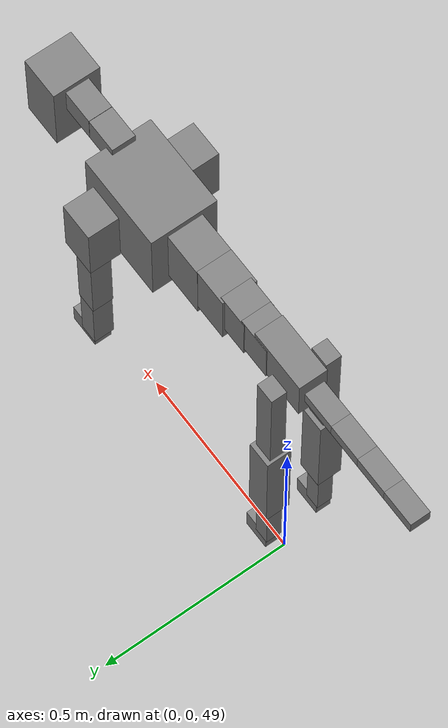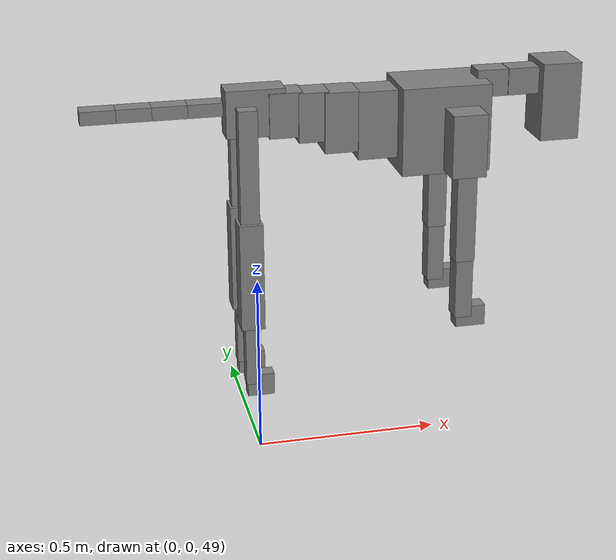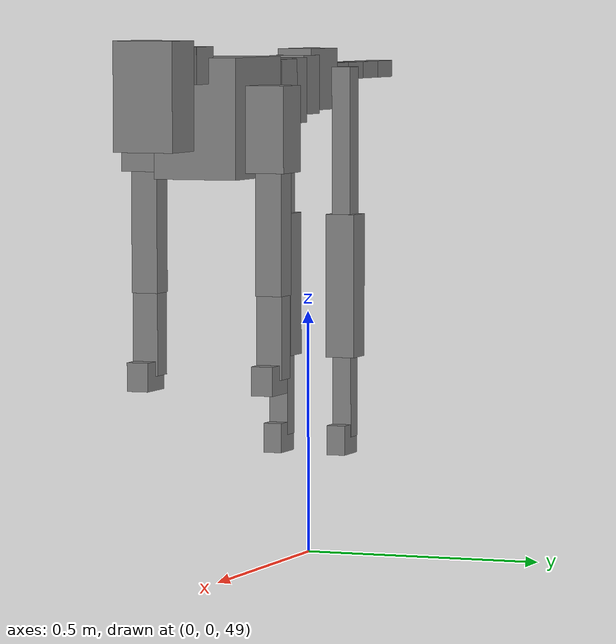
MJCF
<mujoco model="dog">

    <default>
        <joint armature="0.02" stiffness="1" damping="0.2" limited="true"/>
        <geom condim="3" friction="1 0.05 0.05" margin="0.01"/>
        <motor ctrllimited="true" ctrlrange="-1.0 1.0" forcelimited="true" gear="50"/>
    </default>

    <compiler inertiafromgeom="true" angle="radian"/>

    <option timestep="0.016" iterations="50" tolerance="1e-10" solver="Newton" jacobian="dense" cone="pyramidal"/>

    <size nconmax="20000" njmax="60000" nstack="5000000"/>
    <visual>
        <map force="0.1" zfar="30"/>
        <rgba haze="0.15 0.25 0.35 1"/>
        <quality shadowsize="2048"/>
        <global offwidth="800" offheight="800"/>
    </visual>

    <asset>
        <texture type="skybox" builtin="gradient" rgb1="0.3 0.5 0.7" rgb2="0 0 0" width="512" height="512"/>
        <texture name="texplane" type="2d" builtin="checker" rgb1=".2 .3 .4" rgb2=".1 0.15 0.2" width="512" height="512"
                 mark="cross" markrgb=".8 .8 .8"/>
        <texture name="texgeom" type="cube" builtin="flat" mark="cross" width="127" height="1278" rgb1="0.8 0.6 0.4"
                 rgb2="0.8 0.6 0.4" markrgb="1 1 1" random="0.01"/>

        <material name="matplane" reflectance="0.3" texture="texplane" texrepeat="1 1" texuniform="true"/>
        <material name="matgeom" texture="texgeom" texuniform="true" rgba="0.8 0.6 .4 1"/>
    </asset>

    <worldbody>
        <geom name="floor" pos="0 0 0" size="0 0 .25" type="plane" material="matplane" condim="3"/>

        <light directional="false" diffuse=".2 .2 .2" specular="0 0 0" pos="0 0 5" dir="0 0 -1" castshadow="false"/>
        <light mode="targetbodycom" target="torso" directional="false" diffuse=".8 .8 .8" specular="0.3 0.3 0.3"
               pos="0 0 4.0" dir="0 0 -1"/>

        <body name="root" pos="0 0 50">
            <freejoint name="root_1"/>
            <geom type="box" pos="0 0 -0.02" size="0.0774  0.0358  0.063" density="2030"/>

            <body name="spine1" pos="0.054 0 0">
                <joint name="spine1_y" axis="0 1 0" range="0 0.7" limited="true"/>
                <geom type="box" pos="0.02375 0 -0.03" size="0.04375  0.0375  0.05985" density="2030"/>

                <body name="spine2" pos="0.0612 0 0">
                    <joint name="spine2_y" axis="0 1 0" range="-0.15 0.15" limited="true"/>
                    <geom type="box" pos="0.03555  0  -0.04" size="0.04055  0.039  0.06615" density="2030"/>

                    <body name="spine3" pos="0.0730 0 0">
                        <joint name="spine3_y" axis="0 1 0" range="-0.15 0.15" limited="true"/>
                        <geom type="box" pos="0.03555  0  -0.057" size="0.04555  0.0445  0.081" density="2030"/>

                        <body name="spine4" pos="0.0780 0 0">
                            <joint name="spine4_y" axis="0 1 0" range="-0.15 0.15" limited="true"/>
                            <geom type="box" pos="0.05265  0  -0.07" size="0.05265  0.045  0.09135" density="2030"/>

                            <body name="torso" pos="0.1082 0 0">
                                <joint name="torso_y" axis="0 1 0" range="-0.15 0.15" limited="true"/>
                                <geom type="box" pos="0.11925  0  -0.085" size="0.11925  0.085  0.11745"
                                      density="2030"/>

                                <body name="neck1" pos="0.2160  0   0.0180">
                                    <joint name="neck1_y" axis="0 1 0" range="-1.2  -1" limited="true"/>
                                    <geom type="box" pos="0.0423  0  0" size="0.0423  0.03  0.036" density="2325"/>

                                    <body name="neck2" pos="0.0853  0  0">
                                        <joint name="neck2_y" axis="0 1 0" range="0.1  0" limited="true"/>
                                        <geom type="box" pos="0.0423  0  0" size="0.0423  0.03  0.036" density="2325"/>

                                        <body name="head" pos="0.0853  0  0">
                                            <joint name="head_y" axis="0 1 0" range="-0.3  -0.2" limited="true"/>
                                            <geom type="box" pos="0.0531  0  -0.055" size="0.0531  0.06  0.1044"
                                                  density="4030"/>

                                        </body>
                                    </body>
                                </body>

                                <body name="front_shoulder" pos="0.156  0   -0.0480">
                                    <joint name="front_shoulder_y" axis="0 1 0" range="-1 1.5" limited="true"/>
                                    <geom type="box" pos="0 0.13 -0.0576" size="0.0460  0.0393  0.0842" density="1158"/>
                                    <geom type="box" pos="0 -0.13 -0.0576" size="0.0460  0.0393  0.0842"
                                          density="1158"/>

                                    <body name="front_elbow" pos="0  0  -0.1151">
                                        <joint name="front_elbow_y" axis="0 1 0" range="-2 0" limited="true"/>
                                        <geom type="box" pos="0 0.13 -0.1326" size="0.0262  0.0267  0.1326"
                                              density="1081"/>
                                        <geom type="box" pos="0 -0.13 -0.1326" size="0.0262  0.0267  0.1326"
                                              density="1081"/>

                                        <body name="front_wrist" pos="0  0  -0.2652">
                                            <joint name="front_wrist_y" axis="0 1 0" range="-0.2 0" limited="true"/>
                                            <geom type="box" pos="0 0.13 -0.0744" size="0.0234  0.0260  0.0875"
                                                  density="1664"/>
                                            <geom type="box" pos="0 -0.13 -0.0744" size="0.0234  0.0260  0.0875"
                                                  density="1664"/>

                                            <body name="front_finger_end" pos="0  0  -0.1488">
                                                <joint name="front_finger_y" axis="0 1 0" range="-0.4 1"
                                                       limited="true"/>
                                                <geom type="box" pos="0.0221  0.13  -0.0133"
                                                      size="0.0405  0.0221  0.0283" density="1515"/>
                                                <geom type="box" pos="0.0221  -0.13  -0.0133"
                                                      size="0.0405  0.0221  0.0283" density="1515"/>

                                            </body>

                                        </body>
                                    </body>
                                </body>

                            </body>
                        </body>
                    </body>
                </body>
            </body>

            <body name="back_hip" pos="-0.03 0 -0.018">
                <joint name="back_hip_y" axis="0 1 0" range="-1.5 0.3" limited="true"/>
                <geom type="box" pos="0 0.07 -0.1480" size="0.0250  0.0196  0.1708" density="1154"/>
                <geom type="box" pos="0 -0.07 -0.1480" size="0.0250  0.0196  0.1708" density="1154"/>

                <body name="back_knee" pos="0  0  -0.2960">
                    <joint name="back_knee_y" axis="0 1 0" range="0 2.8" limited="true"/>
                    <geom type="box" pos="0 0.07 -0.1322" size="0.0315  0.0311  0.1477" density="1227"/>
                    <geom type="box" pos="0 -0.07 -0.1322" size="0.0315  0.0311  0.1477" density="1227"/>

                    <body name="back_ankle" pos="0  0  -0.2644">
                        <joint name="back_ankle_y" axis="0 1 0" range="-2.2 0" limited="true"/>
                        <geom type="box" pos="0 0.07 -0.0849" size="0.0199  0.0199  0.0961" density="1284"/>
                        <geom type="box" pos="0 -0.07 -0.0849" size="0.0199  0.0199  0.0961" density="1284"/>

                        <body name="back_toe_end" pos="0  0  -0.1698">
                            <joint name="back_toe_y" axis="0 1 0" range="-0.4 1" limited="true"/>
                            <geom type="box" pos="0.0196  0.07  -0.0154" size="0.0360  0.0196  0.0304" density="1515"/>
                            <geom type="box" pos="0.0196  -0.07  -0.0154" size="0.0360  0.0196  0.0304" density="1515"/>

                        </body>
                    </body>
                </body>
            </body>

            <body name="tail1" pos="-0.074 0 -0.006">
                <joint name="tail1_y" axis="0 1 0" range="-0.2 0.2" limited="true"/>
                <geom type="box" pos="-0.0536  0  0" size="0.045  0.025  0.0175" density="1587"/>

                <body name="tail2" pos="-0.09 0 0">
                    <joint name="tail2_y" axis="0 1 0" range="-0.2 0.2" limited="true"/>
                    <geom type="box" pos="-0.0536  0  0" size="0.045  0.025  0.0175" density="1587"/>

                    <body name="tail3" pos="-0.09 0 0">
                        <joint name="tail3_y" axis="0 1 0" range="-0.2 0.2" limited="true"/>
                        <geom type="box" pos="-0.0536  0  0" size="0.045  0.025  0.0175" density="1587"/>

                        <body name="tail4" pos="-0.09 0 0">
                            <joint name="tail4_y" axis="0 1 0" range="-0.2 0.2" limited="true"/>
                            <geom type="box" pos="-0.0536  0  0" size="0.045  0.025  0.0175" density="1587"/>

                        </body>
                    </body>
                </body>
            </body>
        </body>
    </worldbody>

    <actuator>
        <motor joint="spine1_y" forcerange="-150 150     "/>
        <motor joint="spine2_y" forcerange="-150 150     "/>
        <motor joint="spine3_y" forcerange="-150 150     "/>
        <motor joint="spine4_y" forcerange="-150 150     "/>
        <motor joint="torso_y" forcerange="-150 150     "/>
        <motor joint="neck1_y" forcerange="-100 100       "/>
        <motor joint="neck2_y" forcerange="-100 100       "/>
        <motor joint="head_y" forcerange="-150 150       "/>
        <motor joint="front_shoulder_y" forcerange="-185.78 176.05"/>
        <motor joint="front_elbow_y" forcerange="-159.95 134.49"/>
        <motor joint="front_wrist_y" forcerange="-71.54 136.69"/>
        <motor joint="front_finger_y" forcerange="-50.54 27.41"/>
        <motor joint="back_hip_y" forcerange="-201.59 260.29"/>
        <motor joint="back_knee_y" forcerange="-317.73 333.96"/>
        <motor joint="back_angle_y" forcerange="-166.55 51.67"/>
        <motor joint="back_toe_y" forcerange="-43.85 33.10"/>
        <motor joint="tail1_y" forcerange="-50 50     "/>
        <motor joint="tail2_y" forcerange="-50 50     "/>
        <motor joint="tail3_y" forcerange="-50 50     "/>
        <motor joint="tail4_y" forcerange="-50 50     "/>
    </actuator>
</mujoco>
